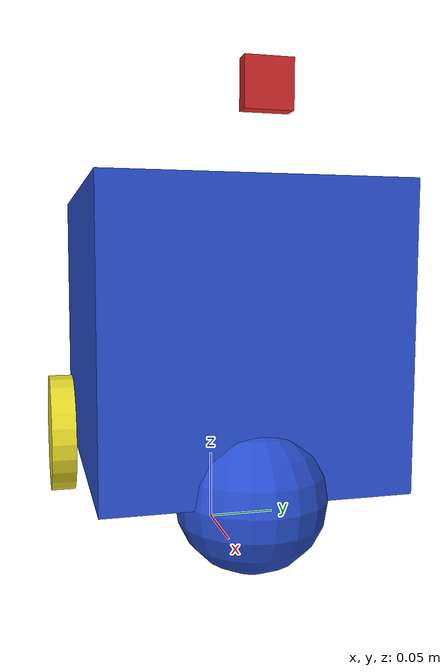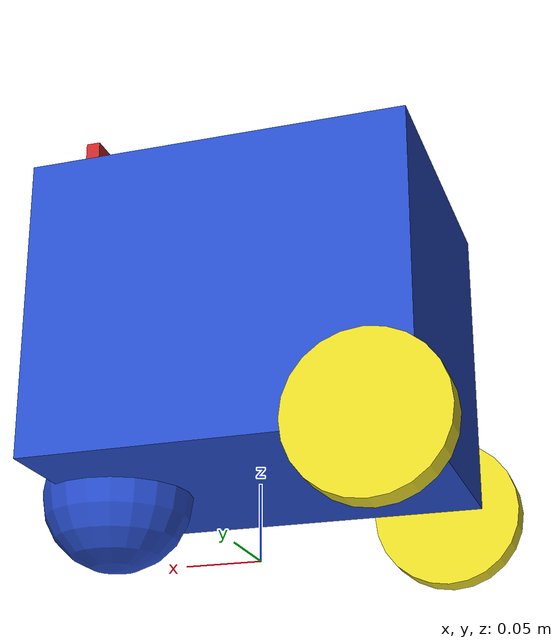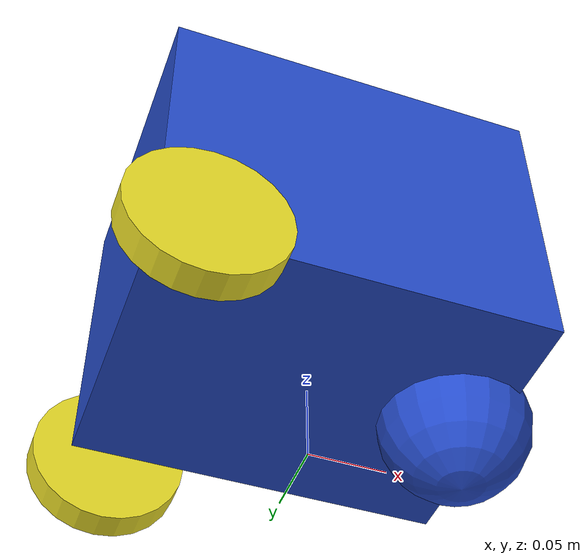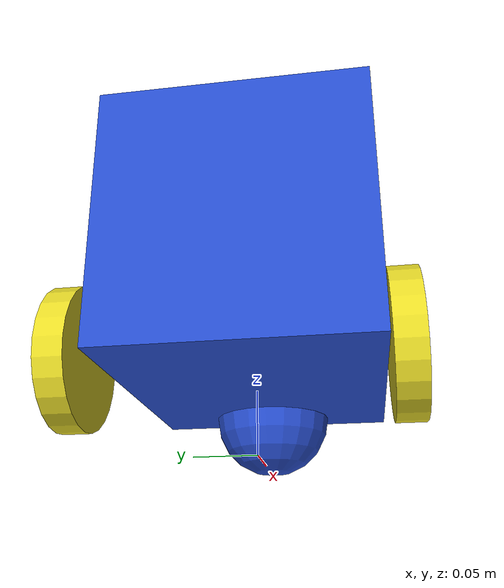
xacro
<?xml version="1.0"?>

<!-- URDF desc for differential drive robot -->

<robot name="differential_drive_robot" xmlns:xacro="http://www.ros.org/wiki/xacro">

<!--########## Geometry and Constants ##########-->

<!--Body Dimensions-->
<xacro:property name="pi_const" value="3.14159265"/>
<xacro:property name="a" value="0.25"/>
<xacro:property name="b" value="0.2"/>
<xacro:property name="c" value="0.2"/>

<!--Wheel and Caster-->
<xacro:property name="r" value="0.05"/>
<xacro:property name="d" value="0.02"/>

<xacro:property name="s1" value="${b/2+r}"/>
<xacro:property name="s2" value="${2*r}"/>
<xacro:property name="s3" value="${2*r}"/>
<xacro:property name="s4" value="${c/2+d/2}"/>

<!--########## MASS & INERTIA ##########-->

<!-- Material Density -->
<!-- Body Material Density -->
<xacro:property name="d1" value="2710.0"/>
<!-- Wheel Material Density -->
<xacro:property name="d2" value="2710.0"/>
<!-- Caster Material Density -->
<xacro:property name="d3" value="2710.0"/>

<!-- Body, wheel, caster mass -->
<!--Body -->
<xacro:property name="m1" value="${d1*a*b*c}"/>
<!-- Wheel -->
<xacro:property name="m2" value="${d2*pi_const*r*r*d}"/>
<!--Caster -->
<xacro:property name="m3" value="${d3*(4.0/3.0)*pi_const*r*r*r}"/>

<!-- Moments of inertia of body -->
<xacro:property name="Ix_body" value="${(1/12)*m1*(b*b+c*c) }" />
<xacro:property name="Iy_body" value="${(1/12)*m1*(a*a+b*b) }" />
<xacro:property name="Iz_body" value="${(1/12)*m1*(a*a+c*c) }" />

<!-- Moments of inertia of body -->
<xacro:property name="Iz_wheel" value="${0.5*m2*r*r}"/>
<xacro:property name="I_wheel" value="${(1.0/12.0)*m2*(3.0*r*r+d*d)}"/>

<!-- Moments of inertia of caster sphere -->
<xacro:property name="I_caster" value="${(2.0/5.0)*m3*r*r}" />

<!-- Macros for complete inertial section of the body -->
<xacro:macro name="inertia_body">
    <inertial>
    <origin rpy="0 0 0" xyz="0 0 ${s1}" />
    <mass value="${m1}"/>
    <inertia ixx="${Ix_body}" ixy="0.0" ixz="0.0" iyy="${Iy_body}" iyz="0" izz="${Iz_body}" />
    </inertial>
</xacro:macro>

<!-- Macros for complete inertial section of the wheel -->
<xacro:macro name="inertia_wheel">
    <inertial>
    <origin rpy="1.570795 0 0" xyz="0 0 0" />
    <mass value="${m2}"/>
    <inertia ixx="${I_wheel}" ixy="0.0" ixz="0.0" iyy="${I_wheel}" iyz="0" izz="${Iz_wheel}" />
    </inertial>
</xacro:macro>

<!-- Macros for complete inertial section of the caster -->
<xacro:macro name="inertia_caster">
    <inertial>
    <origin rpy="0 0 0" xyz="0 0 0" />
    <mass value="${m3}"/>
    <inertia ixx="${I_caster}" ixy="0.0" ixz="0.0" iyy="${I_caster}" iyz="0" izz="${I_caster}" />
    </inertial>
</xacro:macro>

<!--########## INCLUDE ADDITIONAL FILES ##########-->
<xacro:include filename="$(find mobile_robot)/model/robot.gazebo" />

<!--########## DEFINE LINKS, JOINTS ##########-->

<!--# Fictious link of robot #-->
<link name="base_footprint"> </link>
<joint name="body_link_joint" type="fixed">
    <parent link="base_footprint"/>
    <child link="body_link"/>
</joint>

<!--# Body link of robot #-->
<link name="body_link">
    <visual>
        <geometry>
            <box size="${a} ${c} ${b}"/>
        </geometry>
        <origin rpy="0 0 0" xyz="0 0 ${s1}"/>
    </visual>

    <collision>
        <geometry>
            <box size="${a} ${c} ${b}"/>
        </geometry>
        <origin rpy="0 0 0" xyz="0 0 ${s1}"/>
    </collision>

    <xacro:inertia_body />
</link>

<!--# Back right wheel and joint #-->

<joint name="wheel1_joint" type="continuous" >
    <parent link="body_link"/>
    <child link="wheel1_link" />
    <origin xyz="${-s2} ${-s4} ${r}" rpy="0 0 0" />
    <axis xyz="0 1 0" />
    <limit effort="50000" velocity="10" />
    <dynamics damping="1.0" friction="1.0" />
</joint>

<link name="wheel1_link">
    <visual>
        <origin rpy="1.570795 0 0" xyz="0 0 0"/>
        <geometry>
            <cylinder length="${d}" radius="${r}" />
        </geometry>

    </visual>

    <collision>
        <origin rpy="1.570795 0 0" xyz="0 0 0"/>
        <geometry>
            <cylinder length="${d}" radius="${r}" />
        </geometry>
    </collision>

    <xacro:inertia_wheel />
</link>

<!--# Back left wheel and joint #-->

<joint name="wheel2_joint" type="continuous" >
    <parent link="body_link"/>
    <child link="wheel2_link" />
    <origin xyz="${-s2} ${s4} ${r}" rpy="0 0 0" />
    <axis xyz="0 1 0" />
    <limit effort="50000" velocity="10" />
    <dynamics damping="1.0" friction="1.0" />
</joint>

<link name="wheel2_link">
    <visual>
        <origin rpy="1.570795 0 0" xyz="0 0 0"/>
        <geometry>
            <cylinder length="${d}" radius="${r}" />
        </geometry>

    </visual>

    <collision>
        <origin rpy="1.570795 0 0" xyz="0 0 0"/>
        <geometry>
            <cylinder length="${d}" radius="${r}" />
        </geometry>
    </collision>

    <xacro:inertia_wheel />
</link>

<!--# Caster wheel and joint #-->

<joint name="caster_joint" type="fixed" >
    <parent link="body_link"/>
    <child link="caster_link" />
    <origin xyz="${s3} 0 ${r}" rpy="0 0 0" />
</joint>

<link name="caster_link">
    <visual>
        <origin rpy="0 0 0" xyz="0 0 0"/>
        <geometry>
            <sphere radius="${r}" />
        </geometry>

    </visual>

    <collision>
        <origin rpy="0 0 0" xyz="0 0 0"/>
        <geometry>
            <sphere radius="${r}" />
        </geometry>
    </collision>

    <xacro:inertia_caster />
</link>

<!--######### LIDAR/CAMERA joint/link############-->

<joint name="camera_joint" type="fixed" >
    <parent link="body_link"/>
    <child link="camera_link" />
    <origin xyz=" ${a/2} 0 0.3" rpy="0 0 0" />
</joint>

<link name="camera_link">
    <visual>
        <geometry>
            <box size="0.010 0.03 0.03"/>
        </geometry>
        <material name="red" />

    </visual>

</link>

<!-- x right, y down, z forward-->
<joint name="camera_optical_joint" type="fixed" >
    <parent link="camera_link"/>
    <child link="camera_optical_link" />
    <origin xyz="0 0 0" rpy="-1.570795 0 -1.570795" />
</joint>

<link name="camera_optical_link" />

</robot>
